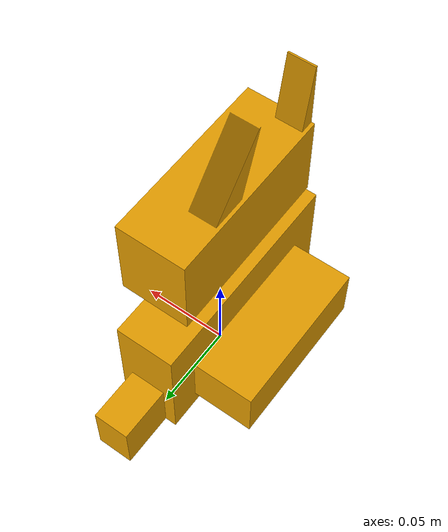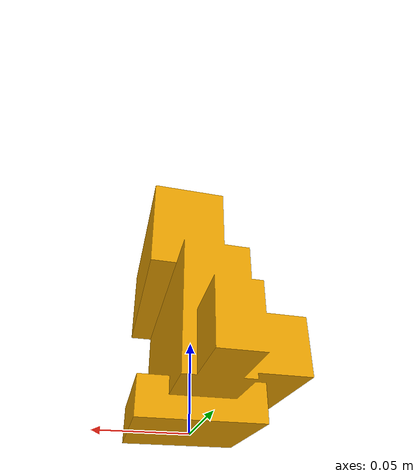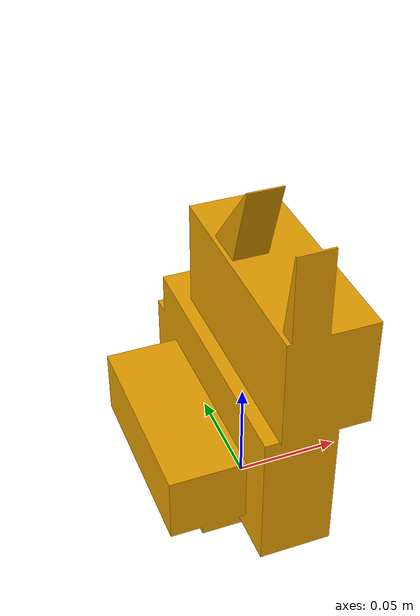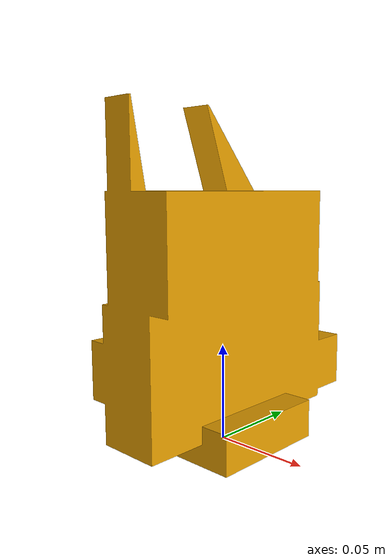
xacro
<?xml version="1.0"?>
<robot xmlns:xacro="http://wiki.ros.org/xacro" name="hiwin_gripper">
    <link name="tool_base">
        <visual>
            <origin
                xyz="0 0 0"
                rpy="0 0 0" />
            <geometry>
                <mesh filename="file://$(find mr_description)/meshes/tool/tool_no_suctoin.stl" />
            </geometry>
        </visual>
        <collision>
            <origin
                xyz="0 0 0"
                rpy="0 0 0" />
            <geometry>
                <mesh filename="file://$(find mr_description)/meshes/tool/tool_no_suctoin.stl" />
            </geometry>
        </collision>
    </link>
    <joint name="tool_base-tool_tip" type="fixed">
        <origin xyz="0 0 0.178" rpy="0 0 0"/>
        <parent link="tool_base"/>
        <child link="tool_tip"/>
    </joint>
    <link name="tool_tip"/>
</robot>
